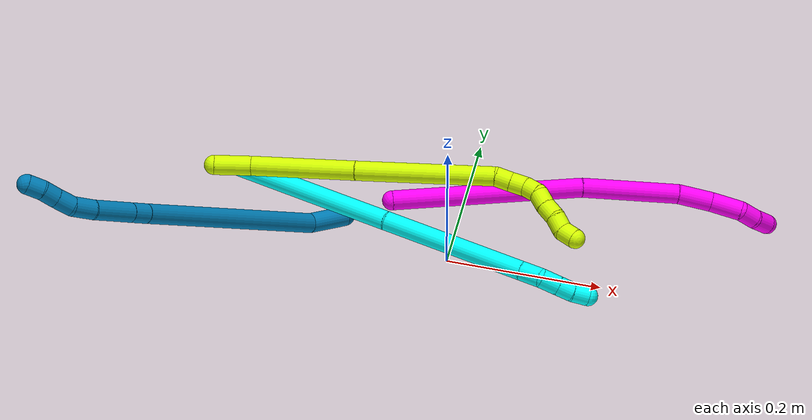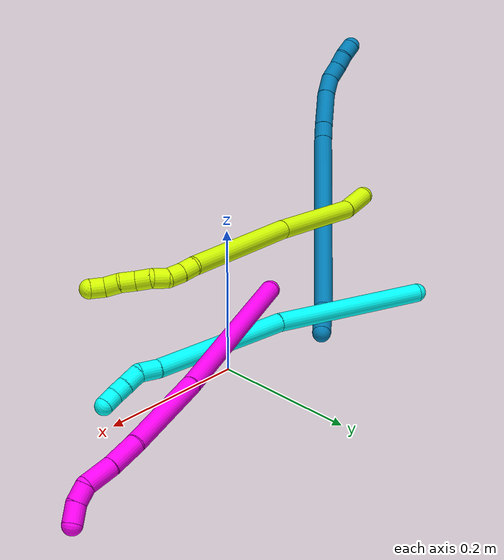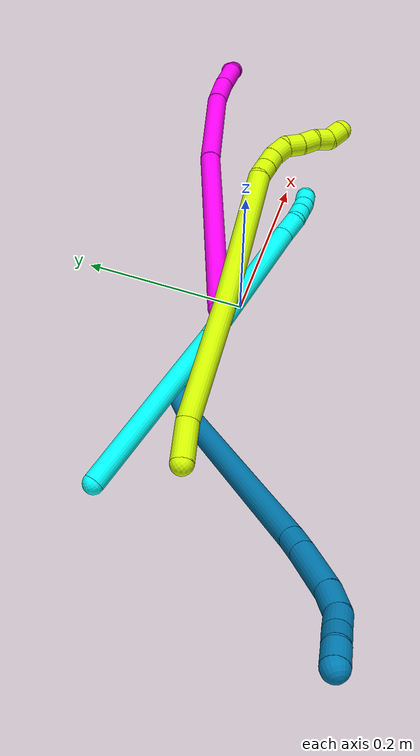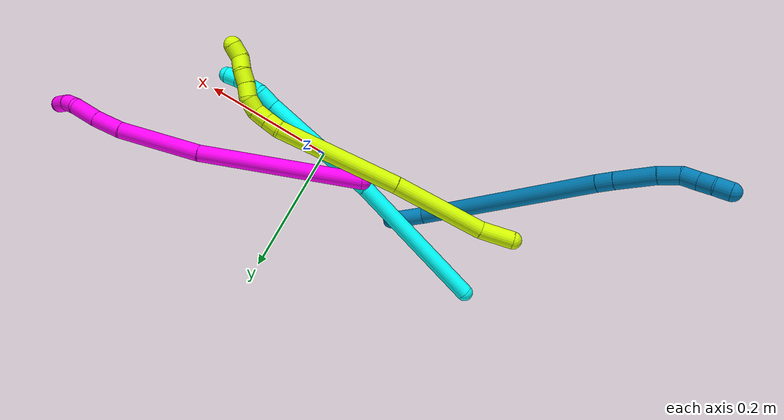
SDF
<sdf version="1.7">
 <world name="default">
  <model name="photoneo_s_sensor">
   <static>1</static>
   <pose>0 0 2 1.57079 1.57079 3.14159</pose>
   <link name="link">
    <inertial><mass>0.1</mass></inertial>
    <sensor name="sensor" type="depth">
     <update_rate>30</update_rate>
     <camera>
      <horizontal_fov>1.22</horizontal_fov>
      <image><width>1920</width><height>1200</height><format>B8G8R8</format></image>
      <clip><near>0.1</near><far>4</far></clip>
      <depth_camera><output>points</output></depth_camera>
     </camera>
     <plugin name="camera_plugin" filename="libgazebo_ros_depth_camera.so">
      <baseline>0.2</baseline>
      <alwaysOn>1</alwaysOn>
      <updateRate>0.0</updateRate>
      <cameraName>camera_ir</cameraName>
      <imageTopicName>/camera/color/image_raw</imageTopicName>
      <cameraInfoTopicName>/camera/color/camera_info</cameraInfoTopicName>
      <depthImageTopicName>/camera/depth/image_raw</depthImageTopicName>
      <depthImageCameraInfoTopicName>/camera/depth/camera_info</depthImageCameraInfoTopicName>
      <pointCloudTopicName>/camera/depth/points</pointCloudTopicName>
      <frameName>fr_optical</frameName>
      <pointCloudCutoff>0.1</pointCloudCutoff>
      <pointCloudCutoffMax>2.0</pointCloudCutoffMax>
      <distortionK1>0</distortionK1>
      <distortionK2>0</distortionK2>
      <distortionK3>0</distortionK3>
      <distortionT1>0</distortionT1>
      <distortionT2>0</distortionT2>
      <CxPrime>0</CxPrime>
      <Cx>0</Cx>
      <Cy>0</Cy>
      <focalLength>0</focalLength>
      <hackBaseline>0</hackBaseline>
     </plugin>
    </sensor>
   </link>
  </model>
  <model name="bin">
   <static>1</static>
   <link name="bottom">
    <collision name="collision-bottom">
     <pose>0 0 -0.01 0 -0 0</pose>
     <geometry><box><size>0.8 0.6 0.02</size></box></geometry>
     <surface>
      <friction><ode><mu>100</mu><mu2>100</mu2></ode></friction>
      <contact><collide_bitmask>65535</collide_bitmask></contact>
     </surface>
    </collision>
   </link>
   <link name="west_wall">
    <collision name="collision-west_wall">
     <pose>-0.41 0 0.1 0 -0 0</pose>
     <geometry><box><size>0.02 0.6 0.2</size></box></geometry>
     <surface>
      <friction><ode><mu>100</mu><mu2>100</mu2></ode></friction>
      <contact><collide_bitmask>65535</collide_bitmask></contact>
     </surface>
    </collision>
   </link>
   <link name="east_wall">
    <collision name="collision-east_wall">
     <pose>0.41 0 0.1 0 -0 0</pose>
     <geometry><box><size>0.02 0.6 0.2</size></box></geometry>
     <surface>
      <friction><ode><mu>100</mu><mu2>100</mu2></ode></friction>
      <contact><collide_bitmask>65535</collide_bitmask></contact>
     </surface>
    </collision>
   </link>
   <link name="south_wall">
    <collision name="collision-south_wall">
     <pose>0 -0.31 0.1 0 -0 0</pose>
     <geometry><box><size>0.8 0.02 0.2</size></box></geometry>
     <surface>
      <friction><ode><mu>100</mu><mu2>100</mu2></ode></friction>
      <contact><collide_bitmask>65535</collide_bitmask></contact>
     </surface>
    </collision>
   </link>
   <link name="north_wall">
    <collision name="collision-north_wall">
     <pose>0 0.31 0.1 0 -0 0</pose>
     <geometry><box><size>0.8 0.02 0.2</size></box></geometry>
     <surface>
      <friction><ode><mu>100</mu><mu2>100</mu2></ode></friction>
      <contact><collide_bitmask>65535</collide_bitmask></contact>
     </surface>
    </collision>
   </link>
  </model>
  <model name="3">
   <static>0</static>
   <link name="3">
    <collision name="collision-cylinder-e_1_1_4">
     <pose>0.091592 -0.060018 -0.003148 1.62319 0.990094 1.03455</pose>
     <geometry><cylinder><radius>0.0125</radius><length>0.2191</length></cylinder></geometry>
     <surface>
      <friction><ode><mu>1.16</mu><mu2>1.16</mu2><slip1>0</slip1><slip2>0</slip2></ode></friction>
      <contact><ode><kp>1e+06</kp><kd>1</kd><max_vel>0</max_vel><min_depth>0.001</min_depth></ode></contact>
     </surface>
    </collision>
    <visual name="visual-cylinder-e_1_1_4">
     <pose>0.091592 -0.060018 -0.003148 1.62319 0.990094 1.03455</pose>
     <geometry><cylinder><radius>0.0125</radius><length>0.2191</length></cylinder></geometry>
     <material><ambient>0.003922 1 0.996078 1</ambient></material>
    </visual>
    <collision name="collision-cylinder-e_2_4_5">
     <pose>0.267713 -0.160877 -0.01191 1.70742 1.11703 1.24365</pose>
     <geometry><cylinder><radius>0.0125</radius><length>0.188093</length></cylinder></geometry>
     <surface>
      <friction><ode><mu>1.16</mu><mu2>1.16</mu2><slip1>0</slip1><slip2>0</slip2></ode></friction>
      <contact><ode><kp>1e+06</kp><kd>1</kd><max_vel>0</max_vel><min_depth>0.001</min_depth></ode></contact>
     </surface>
    </collision>
    <visual name="visual-cylinder-e_2_4_5">
     <pose>0.267713 -0.160877 -0.01191 1.70742 1.11703 1.24365</pose>
     <geometry><cylinder><radius>0.0125</radius><length>0.188093</length></cylinder></geometry>
     <material><ambient>0.003922 1 0.996078 1</ambient></material>
    </visual>
    <collision name="collision-cylinder-e_3_5_6">
     <pose>0.363901 -0.20943 -0.017891 1.61817 0.985947 1.02597</pose>
     <geometry><cylinder><radius>0.0125</radius><length>0.027965</length></cylinder></geometry>
     <surface>
      <friction><ode><mu>1.16</mu><mu2>1.16</mu2><slip1>0</slip1><slip2>0</slip2></ode></friction>
      <contact><ode><kp>1e+06</kp><kd>1</kd><max_vel>0</max_vel><min_depth>0.001</min_depth></ode></contact>
     </surface>
    </collision>
    <visual name="visual-cylinder-e_3_5_6">
     <pose>0.363901 -0.20943 -0.017891 1.61817 0.985947 1.02597</pose>
     <geometry><cylinder><radius>0.0125</radius><length>0.027965</length></cylinder></geometry>
     <material><ambient>0.003922 1 0.996078 1</ambient></material>
    </visual>
    <collision name="collision-cylinder-e_4_6_7">
     <pose>0.387197 -0.218376 -0.020675 2.66909 1.34152 2.55244</pose>
     <geometry><cylinder><radius>0.0125</radius><length>0.0239</length></cylinder></geometry>
     <surface>
      <friction><ode><mu>1.16</mu><mu2>1.16</mu2><slip1>0</slip1><slip2>0</slip2></ode></friction>
      <contact><ode><kp>1e+06</kp><kd>1</kd><max_vel>0</max_vel><min_depth>0.001</min_depth></ode></contact>
     </surface>
    </collision>
    <visual name="visual-cylinder-e_4_6_7">
     <pose>0.387197 -0.218376 -0.020675 2.66909 1.34152 2.55244</pose>
     <geometry><cylinder><radius>0.0125</radius><length>0.0239</length></cylinder></geometry>
     <material><ambient>0.003922 1 0.996078 1</ambient></material>
    </visual>
    <collision name="collision-cylinder-e_5_7_8">
     <pose>0.408754 -0.220826 -0.025103 2.59847 1.33844 2.46466</pose>
     <geometry><cylinder><radius>0.0125</radius><length>0.020387</length></cylinder></geometry>
     <surface>
      <friction><ode><mu>1.16</mu><mu2>1.16</mu2><slip1>0</slip1><slip2>0</slip2></ode></friction>
      <contact><ode><kp>1e+06</kp><kd>1</kd><max_vel>0</max_vel><min_depth>0.001</min_depth></ode></contact>
     </surface>
    </collision>
    <visual name="visual-cylinder-e_5_7_8">
     <pose>0.408754 -0.220826 -0.025103 2.59847 1.33844 2.46466</pose>
     <geometry><cylinder><radius>0.0125</radius><length>0.020387</length></cylinder></geometry>
     <material><ambient>0.003922 1 0.996078 1</ambient></material>
    </visual>
    <collision name="collision-cylinder-e_6_8_2">
     <pose>0.428928 -0.222554 -0.027564 2.29065 1.50408 2.23935</pose>
     <geometry><cylinder><radius>0.0125</radius><length>0.020556</length></cylinder></geometry>
     <surface>
      <friction><ode><mu>1.16</mu><mu2>1.16</mu2><slip1>0</slip1><slip2>0</slip2></ode></friction>
      <contact><ode><kp>1e+06</kp><kd>1</kd><max_vel>0</max_vel><min_depth>0.001</min_depth></ode></contact>
     </surface>
    </collision>
    <visual name="visual-cylinder-e_6_8_2">
     <pose>0.428928 -0.222554 -0.027564 2.29065 1.50408 2.23935</pose>
     <geometry><cylinder><radius>0.0125</radius><length>0.020556</length></cylinder></geometry>
     <material><ambient>0.003922 1 0.996078 1</ambient></material>
    </visual>
    <collision name="collision-sphere-2">
     <pose>0.439183 -0.223069 -0.028015 0 -0 0</pose>
     <geometry><sphere><radius>0.0125</radius></sphere></geometry>
     <surface>
      <friction><ode><mu>1.16</mu><mu2>1.16</mu2><slip1>0</slip1><slip2>0</slip2></ode></friction>
      <contact><ode><kp>1e+06</kp><kd>1</kd><max_vel>0</max_vel><min_depth>0.001</min_depth></ode></contact>
     </surface>
    </collision>
    <visual name="visual-sphere-2">
     <pose>0.439183 -0.223069 -0.028015 0 -0 0</pose>
     <geometry><sphere><radius>0.0125</radius></sphere></geometry>
     <material><ambient>0.003922 1 0.996078 1</ambient></material>
    </visual>
    <collision name="collision-sphere-4">
     <pose>0.183184 -0.120036 -0.006295 0 -0 0</pose>
     <geometry><sphere><radius>0.0125</radius></sphere></geometry>
     <surface>
      <friction><ode><mu>1.16</mu><mu2>1.16</mu2><slip1>0</slip1><slip2>0</slip2></ode></friction>
      <contact><ode><kp>1e+06</kp><kd>1</kd><max_vel>0</max_vel><min_depth>0.001</min_depth></ode></contact>
     </surface>
    </collision>
    <visual name="visual-sphere-4">
     <pose>0.183184 -0.120036 -0.006295 0 -0 0</pose>
     <geometry><sphere><radius>0.0125</radius></sphere></geometry>
     <material><ambient>0.003922 1 0.996078 1</ambient></material>
    </visual>
    <collision name="collision-sphere-1">
     <geometry><sphere><radius>0.0125</radius></sphere></geometry>
     <surface>
      <friction><ode><mu>1.16</mu><mu2>1.16</mu2><slip1>0</slip1><slip2>0</slip2></ode></friction>
      <contact><ode><kp>1e+06</kp><kd>1</kd><max_vel>0</max_vel><min_depth>0.001</min_depth></ode></contact>
     </surface>
    </collision>
    <visual name="visual-sphere-1">
     <geometry><sphere><radius>0.0125</radius></sphere></geometry>
     <material><ambient>0.003922 1 0.996078 1</ambient></material>
    </visual>
    <collision name="collision-sphere-8">
     <pose>0.418673 -0.222039 -0.027112 0 -0 0</pose>
     <geometry><sphere><radius>0.0125</radius></sphere></geometry>
     <surface>
      <friction><ode><mu>1.16</mu><mu2>1.16</mu2><slip1>0</slip1><slip2>0</slip2></ode></friction>
      <contact><ode><kp>1e+06</kp><kd>1</kd><max_vel>0</max_vel><min_depth>0.001</min_depth></ode></contact>
     </surface>
    </collision>
    <visual name="visual-sphere-8">
     <pose>0.418673 -0.222039 -0.027112 0 -0 0</pose>
     <geometry><sphere><radius>0.0125</radius></sphere></geometry>
     <material><ambient>0.003922 1 0.996078 1</ambient></material>
    </visual>
    <collision name="collision-sphere-5">
     <pose>0.352242 -0.201719 -0.017525 0 -0 0</pose>
     <geometry><sphere><radius>0.0125</radius></sphere></geometry>
     <surface>
      <friction><ode><mu>1.16</mu><mu2>1.16</mu2><slip1>0</slip1><slip2>0</slip2></ode></friction>
      <contact><ode><kp>1e+06</kp><kd>1</kd><max_vel>0</max_vel><min_depth>0.001</min_depth></ode></contact>
     </surface>
    </collision>
    <visual name="visual-sphere-5">
     <pose>0.352242 -0.201719 -0.017525 0 -0 0</pose>
     <geometry><sphere><radius>0.0125</radius></sphere></geometry>
     <material><ambient>0.003922 1 0.996078 1</ambient></material>
    </visual>
    <collision name="collision-sphere-6">
     <pose>0.375559 -0.21714 -0.018256 0 -0 0</pose>
     <geometry><sphere><radius>0.0125</radius></sphere></geometry>
     <surface>
      <friction><ode><mu>1.16</mu><mu2>1.16</mu2><slip1>0</slip1><slip2>0</slip2></ode></friction>
      <contact><ode><kp>1e+06</kp><kd>1</kd><max_vel>0</max_vel><min_depth>0.001</min_depth></ode></contact>
     </surface>
    </collision>
    <visual name="visual-sphere-6">
     <pose>0.375559 -0.21714 -0.018256 0 -0 0</pose>
     <geometry><sphere><radius>0.0125</radius></sphere></geometry>
     <material><ambient>0.003922 1 0.996078 1</ambient></material>
    </visual>
    <collision name="collision-sphere-7">
     <pose>0.398834 -0.219613 -0.023093 0 -0 0</pose>
     <geometry><sphere><radius>0.0125</radius></sphere></geometry>
     <surface>
      <friction><ode><mu>1.16</mu><mu2>1.16</mu2><slip1>0</slip1><slip2>0</slip2></ode></friction>
      <contact><ode><kp>1e+06</kp><kd>1</kd><max_vel>0</max_vel><min_depth>0.001</min_depth></ode></contact>
     </surface>
    </collision>
    <visual name="visual-sphere-7">
     <pose>0.398834 -0.219613 -0.023093 0 -0 0</pose>
     <geometry><sphere><radius>0.0125</radius></sphere></geometry>
     <material><ambient>0.003922 1 0.996078 1</ambient></material>
    </visual>
    <inertial>
     <pose>0.214007 -0.127125 -0.010005 0 -0 0</pose>
     <mass>0.5</mass>
     <inertia>
      <ixx>0.001014</ixx>
      <ixy>0</ixy>
      <ixz>0</ixz>
      <iyy>0.001703</iyy>
      <iyz>0</iyz>
      <izz>-0.000524</izz>
     </inertia>
    </inertial>
   </link>
   <pose>-0.293127 0.071516 0.02944 -0.616869 0.272685 0.209619</pose>
  </model>
  <model name="9">
   <static>0</static>
   <link name="9">
    <collision name="collision-cylinder-e_1_1_4">
     <pose>-0.00504 -0.00131 0.025 0.052364 -0.198688 -0.00522</pose>
     <geometry><cylinder><radius>0.0125</radius><length>0.051073</length></cylinder></geometry>
     <surface>
      <friction><ode><mu>1.16</mu><mu2>1.16</mu2><slip1>0</slip1><slip2>0</slip2></ode></friction>
      <contact><ode><kp>1e+06</kp><kd>1</kd><max_vel>0</max_vel><min_depth>0.001</min_depth></ode></contact>
     </surface>
    </collision>
    <visual name="visual-cylinder-e_1_1_4">
     <pose>-0.00504 -0.00131 0.025 0.052364 -0.198688 -0.00522</pose>
     <geometry><cylinder><radius>0.0125</radius><length>0.051073</length></cylinder></geometry>
     <material><ambient>0 0.490196 0.709804 1</ambient></material>
    </visual>
    <collision name="collision-cylinder-e_2_4_5">
     <pose>-0.056502 -0.049919 0.169912 0.375702 -0.345667 -0.066346</pose>
     <geometry><cylinder><radius>0.0125</radius><length>0.274015</length></cylinder></geometry>
     <surface>
      <friction><ode><mu>1.16</mu><mu2>1.16</mu2><slip1>0</slip1><slip2>0</slip2></ode></friction>
      <contact><ode><kp>1e+06</kp><kd>1</kd><max_vel>0</max_vel><min_depth>0.001</min_depth></ode></contact>
     </surface>
    </collision>
    <visual name="visual-cylinder-e_2_4_5">
     <pose>-0.056502 -0.049919 0.169912 0.375702 -0.345667 -0.066346</pose>
     <geometry><cylinder><radius>0.0125</radius><length>0.274015</length></cylinder></geometry>
     <material><ambient>0 0.490196 0.709804 1</ambient></material>
    </visual>
    <collision name="collision-cylinder-e_3_5_6">
     <pose>-0.106539 -0.101321 0.300531 0.366103 -0.305454 -0.056975</pose>
     <geometry><cylinder><radius>0.0125</radius><length>0.024044</length></cylinder></geometry>
     <surface>
      <friction><ode><mu>1.16</mu><mu2>1.16</mu2><slip1>0</slip1><slip2>0</slip2></ode></friction>
      <contact><ode><kp>1e+06</kp><kd>1</kd><max_vel>0</max_vel><min_depth>0.001</min_depth></ode></contact>
     </surface>
    </collision>
    <visual name="visual-cylinder-e_3_5_6">
     <pose>-0.106539 -0.101321 0.300531 0.366103 -0.305454 -0.056975</pose>
     <geometry><cylinder><radius>0.0125</radius><length>0.024044</length></cylinder></geometry>
     <material><ambient>0 0.490196 0.709804 1</ambient></material>
    </visual>
    <collision name="collision-cylinder-e_4_6_7">
     <pose>-0.117883 -0.114908 0.336752 0.355816 -0.276626 -0.050049</pose>
     <geometry><cylinder><radius>0.0125</radius><length>0.056593</length></cylinder></geometry>
     <surface>
      <friction><ode><mu>1.16</mu><mu2>1.16</mu2><slip1>0</slip1><slip2>0</slip2></ode></friction>
      <contact><ode><kp>1e+06</kp><kd>1</kd><max_vel>0</max_vel><min_depth>0.001</min_depth></ode></contact>
     </surface>
    </collision>
    <visual name="visual-cylinder-e_4_6_7">
     <pose>-0.117883 -0.114908 0.336752 0.355816 -0.276626 -0.050049</pose>
     <geometry><cylinder><radius>0.0125</radius><length>0.056593</length></cylinder></geometry>
     <material><ambient>0 0.490196 0.709804 1</ambient></material>
    </visual>
    <collision name="collision-cylinder-e_5_7_8">
     <pose>-0.127768 -0.129914 0.375964 0.383358 -0.145051 -0.028196</pose>
     <geometry><cylinder><radius>0.0125</radius><length>0.02985</length></cylinder></geometry>
     <surface>
      <friction><ode><mu>1.16</mu><mu2>1.16</mu2><slip1>0</slip1><slip2>0</slip2></ode></friction>
      <contact><ode><kp>1e+06</kp><kd>1</kd><max_vel>0</max_vel><min_depth>0.001</min_depth></ode></contact>
     </surface>
    </collision>
    <visual name="visual-cylinder-e_5_7_8">
     <pose>-0.127768 -0.129914 0.375964 0.383358 -0.145051 -0.028196</pose>
     <geometry><cylinder><radius>0.0125</radius><length>0.02985</length></cylinder></geometry>
     <material><ambient>0 0.490196 0.709804 1</ambient></material>
    </visual>
    <collision name="collision-cylinder-e_6_8_9">
     <pose>-0.128441 -0.14195 0.399174 0.600199 0.128031 0.039668</pose>
     <geometry><cylinder><radius>0.0125</radius><length>0.023249</length></cylinder></geometry>
     <surface>
      <friction><ode><mu>1.16</mu><mu2>1.16</mu2><slip1>0</slip1><slip2>0</slip2></ode></friction>
      <contact><ode><kp>1e+06</kp><kd>1</kd><max_vel>0</max_vel><min_depth>0.001</min_depth></ode></contact>
     </surface>
    </collision>
    <visual name="visual-cylinder-e_6_8_9">
     <pose>-0.128441 -0.14195 0.399174 0.600199 0.128031 0.039668</pose>
     <geometry><cylinder><radius>0.0125</radius><length>0.023249</length></cylinder></geometry>
     <material><ambient>0 0.490196 0.709804 1</ambient></material>
    </visual>
    <collision name="collision-cylinder-e_7_9_10">
     <pose>-0.126261 -0.154612 0.416706 0.654347 0.068796 0.023355</pose>
     <geometry><cylinder><radius>0.0125</radius><length>0.020256</length></cylinder></geometry>
     <surface>
      <friction><ode><mu>1.16</mu><mu2>1.16</mu2><slip1>0</slip1><slip2>0</slip2></ode></friction>
      <contact><ode><kp>1e+06</kp><kd>1</kd><max_vel>0</max_vel><min_depth>0.001</min_depth></ode></contact>
     </surface>
    </collision>
    <visual name="visual-cylinder-e_7_9_10">
     <pose>-0.126261 -0.154612 0.416706 0.654347 0.068796 0.023355</pose>
     <geometry><cylinder><radius>0.0125</radius><length>0.020256</length></cylinder></geometry>
     <material><ambient>0 0.490196 0.709804 1</ambient></material>
    </visual>
    <collision name="collision-cylinder-e_8_10_2">
     <pose>-0.123724 -0.165416 0.433907 0.46908 0.176843 0.042359</pose>
     <geometry><cylinder><radius>0.0125</radius><length>0.020919</length></cylinder></geometry>
     <surface>
      <friction><ode><mu>1.16</mu><mu2>1.16</mu2><slip1>0</slip1><slip2>0</slip2></ode></friction>
      <contact><ode><kp>1e+06</kp><kd>1</kd><max_vel>0</max_vel><min_depth>0.001</min_depth></ode></contact>
     </surface>
    </collision>
    <visual name="visual-cylinder-e_8_10_2">
     <pose>-0.123724 -0.165416 0.433907 0.46908 0.176843 0.042359</pose>
     <geometry><cylinder><radius>0.0125</radius><length>0.020919</length></cylinder></geometry>
     <material><ambient>0 0.490196 0.709804 1</ambient></material>
    </visual>
    <collision name="collision-sphere-2">
     <pose>-0.121884 -0.170071 0.443092 0 -0 0</pose>
     <geometry><sphere><radius>0.0125</radius></sphere></geometry>
     <surface>
      <friction><ode><mu>1.16</mu><mu2>1.16</mu2><slip1>0</slip1><slip2>0</slip2></ode></friction>
      <contact><ode><kp>1e+06</kp><kd>1</kd><max_vel>0</max_vel><min_depth>0.001</min_depth></ode></contact>
     </surface>
    </collision>
    <visual name="visual-sphere-2">
     <pose>-0.121884 -0.170071 0.443092 0 -0 0</pose>
     <geometry><sphere><radius>0.0125</radius></sphere></geometry>
     <material><ambient>0 0.490196 0.709804 1</ambient></material>
    </visual>
    <collision name="collision-sphere-10">
     <pose>-0.125564 -0.160762 0.424723 0 -0 0</pose>
     <geometry><sphere><radius>0.0125</radius></sphere></geometry>
     <surface>
      <friction><ode><mu>1.16</mu><mu2>1.16</mu2><slip1>0</slip1><slip2>0</slip2></ode></friction>
      <contact><ode><kp>1e+06</kp><kd>1</kd><max_vel>0</max_vel><min_depth>0.001</min_depth></ode></contact>
     </surface>
    </collision>
    <visual name="visual-sphere-10">
     <pose>-0.125564 -0.160762 0.424723 0 -0 0</pose>
     <geometry><sphere><radius>0.0125</radius></sphere></geometry>
     <material><ambient>0 0.490196 0.709804 1</ambient></material>
    </visual>
    <collision name="collision-sphere-9">
     <pose>-0.126957 -0.148462 0.408689 0 -0 0</pose>
     <geometry><sphere><radius>0.0125</radius></sphere></geometry>
     <surface>
      <friction><ode><mu>1.16</mu><mu2>1.16</mu2><slip1>0</slip1><slip2>0</slip2></ode></friction>
      <contact><ode><kp>1e+06</kp><kd>1</kd><max_vel>0</max_vel><min_depth>0.001</min_depth></ode></contact>
     </surface>
    </collision>
    <visual name="visual-sphere-9">
     <pose>-0.126957 -0.148462 0.408689 0 -0 0</pose>
     <geometry><sphere><radius>0.0125</radius></sphere></geometry>
     <material><ambient>0 0.490196 0.709804 1</ambient></material>
    </visual>
    <collision name="collision-sphere-4">
     <pose>-0.010081 -0.002621 0.05 0 -0 0</pose>
     <geometry><sphere><radius>0.0125</radius></sphere></geometry>
     <surface>
      <friction><ode><mu>1.16</mu><mu2>1.16</mu2><slip1>0</slip1><slip2>0</slip2></ode></friction>
      <contact><ode><kp>1e+06</kp><kd>1</kd><max_vel>0</max_vel><min_depth>0.001</min_depth></ode></contact>
     </surface>
    </collision>
    <visual name="visual-sphere-4">
     <pose>-0.010081 -0.002621 0.05 0 -0 0</pose>
     <geometry><sphere><radius>0.0125</radius></sphere></geometry>
     <material><ambient>0 0.490196 0.709804 1</ambient></material>
    </visual>
    <collision name="collision-sphere-1">
     <geometry><sphere><radius>0.0125</radius></sphere></geometry>
     <surface>
      <friction><ode><mu>1.16</mu><mu2>1.16</mu2><slip1>0</slip1><slip2>0</slip2></ode></friction>
      <contact><ode><kp>1e+06</kp><kd>1</kd><max_vel>0</max_vel><min_depth>0.001</min_depth></ode></contact>
     </surface>
    </collision>
    <visual name="visual-sphere-1">
     <geometry><sphere><radius>0.0125</radius></sphere></geometry>
     <material><ambient>0 0.490196 0.709804 1</ambient></material>
    </visual>
    <collision name="collision-sphere-8">
     <pose>-0.129925 -0.135438 0.38966 0 -0 0</pose>
     <geometry><sphere><radius>0.0125</radius></sphere></geometry>
     <surface>
      <friction><ode><mu>1.16</mu><mu2>1.16</mu2><slip1>0</slip1><slip2>0</slip2></ode></friction>
      <contact><ode><kp>1e+06</kp><kd>1</kd><max_vel>0</max_vel><min_depth>0.001</min_depth></ode></contact>
     </surface>
    </collision>
    <visual name="visual-sphere-8">
     <pose>-0.129925 -0.135438 0.38966 0 -0 0</pose>
     <geometry><sphere><radius>0.0125</radius></sphere></geometry>
     <material><ambient>0 0.490196 0.709804 1</ambient></material>
    </visual>
    <collision name="collision-sphere-5">
     <pose>-0.102924 -0.097217 0.289825 0 -0 0</pose>
     <geometry><sphere><radius>0.0125</radius></sphere></geometry>
     <surface>
      <friction><ode><mu>1.16</mu><mu2>1.16</mu2><slip1>0</slip1><slip2>0</slip2></ode></friction>
      <contact><ode><kp>1e+06</kp><kd>1</kd><max_vel>0</max_vel><min_depth>0.001</min_depth></ode></contact>
     </surface>
    </collision>
    <visual name="visual-sphere-5">
     <pose>-0.102924 -0.097217 0.289825 0 -0 0</pose>
     <geometry><sphere><radius>0.0125</radius></sphere></geometry>
     <material><ambient>0 0.490196 0.709804 1</ambient></material>
    </visual>
    <collision name="collision-sphere-6">
     <pose>-0.110155 -0.105426 0.311236 0 -0 0</pose>
     <geometry><sphere><radius>0.0125</radius></sphere></geometry>
     <surface>
      <friction><ode><mu>1.16</mu><mu2>1.16</mu2><slip1>0</slip1><slip2>0</slip2></ode></friction>
      <contact><ode><kp>1e+06</kp><kd>1</kd><max_vel>0</max_vel><min_depth>0.001</min_depth></ode></contact>
     </surface>
    </collision>
    <visual name="visual-sphere-6">
     <pose>-0.110155 -0.105426 0.311236 0 -0 0</pose>
     <geometry><sphere><radius>0.0125</radius></sphere></geometry>
     <material><ambient>0 0.490196 0.709804 1</ambient></material>
    </visual>
    <collision name="collision-sphere-7">
     <pose>-0.125611 -0.12439 0.362267 0 -0 0</pose>
     <geometry><sphere><radius>0.0125</radius></sphere></geometry>
     <surface>
      <friction><ode><mu>1.16</mu><mu2>1.16</mu2><slip1>0</slip1><slip2>0</slip2></ode></friction>
      <contact><ode><kp>1e+06</kp><kd>1</kd><max_vel>0</max_vel><min_depth>0.001</min_depth></ode></contact>
     </surface>
    </collision>
    <visual name="visual-sphere-7">
     <pose>-0.125611 -0.12439 0.362267 0 -0 0</pose>
     <geometry><sphere><radius>0.0125</radius></sphere></geometry>
     <material><ambient>0 0.490196 0.709804 1</ambient></material>
    </visual>
    <inertial>
     <pose>-0.073837 -0.07291 0.22428 0 -0 0</pose>
     <mass>0.5</mass>
     <inertia>
      <ixx>0.001541</ixx>
      <ixy>0</ixy>
      <ixz>0</ixz>
      <iyy>0.001532</iyy>
      <iyz>0</iyz>
      <izz>0.001234</izz>
     </inertia>
    </inertial>
   </link>
   <pose>-0.141977 0.034334 0.011491 -1.44514 0.371032 2.14738</pose>
  </model>
  <model name="10">
   <static>0</static>
   <link name="10">
    <collision name="collision-cylinder-e_1_1_4">
     <pose>0.094807 0.074013 0.02023 -1.30399 0.890406 -0.698604</pose>
     <geometry><cylinder><radius>0.0125</radius><length>0.243931</length></cylinder></geometry>
     <surface>
      <friction><ode><mu>1.16</mu><mu2>1.16</mu2><slip1>0</slip1><slip2>0</slip2></ode></friction>
      <contact><ode><kp>1e+06</kp><kd>1</kd><max_vel>0</max_vel><min_depth>0.001</min_depth></ode></contact>
     </surface>
    </collision>
    <visual name="visual-cylinder-e_1_1_4">
     <pose>0.094807 0.074013 0.02023 -1.30399 0.890406 -0.698604</pose>
     <geometry><cylinder><radius>0.0125</radius><length>0.243931</length></cylinder></geometry>
     <material><ambient>1 0 0.964706 1</ambient></material>
    </visual>
    <collision name="collision-cylinder-e_2_4_5">
     <pose>0.239637 0.180919 0.057289 -1.09787 0.934627 -0.598706</pose>
     <geometry><cylinder><radius>0.0125</radius><length>0.124378</length></cylinder></geometry>
     <surface>
      <friction><ode><mu>1.16</mu><mu2>1.16</mu2><slip1>0</slip1><slip2>0</slip2></ode></friction>
      <contact><ode><kp>1e+06</kp><kd>1</kd><max_vel>0</max_vel><min_depth>0.001</min_depth></ode></contact>
     </surface>
    </collision>
    <visual name="visual-cylinder-e_2_4_5">
     <pose>0.239637 0.180919 0.057289 -1.09787 0.934627 -0.598706</pose>
     <geometry><cylinder><radius>0.0125</radius><length>0.124378</length></cylinder></geometry>
     <material><ambient>1 0 0.964706 1</ambient></material>
    </visual>
    <collision name="collision-cylinder-e_3_5_6">
     <pose>0.307605 0.222823 0.082604 -0.815453 0.966915 -0.445996</pose>
     <geometry><cylinder><radius>0.0125</radius><length>0.043601</length></cylinder></geometry>
     <surface>
      <friction><ode><mu>1.16</mu><mu2>1.16</mu2><slip1>0</slip1><slip2>0</slip2></ode></friction>
      <contact><ode><kp>1e+06</kp><kd>1</kd><max_vel>0</max_vel><min_depth>0.001</min_depth></ode></contact>
     </surface>
    </collision>
    <visual name="visual-cylinder-e_3_5_6">
     <pose>0.307605 0.222823 0.082604 -0.815453 0.966915 -0.445996</pose>
     <geometry><cylinder><radius>0.0125</radius><length>0.043601</length></cylinder></geometry>
     <material><ambient>1 0 0.964706 1</ambient></material>
    </visual>
    <collision name="collision-cylinder-e_4_6_7">
     <pose>0.341033 0.239758 0.100804 -0.684199 0.890243 -0.336544</pose>
     <geometry><cylinder><radius>0.0125</radius><length>0.039841</length></cylinder></geometry>
     <surface>
      <friction><ode><mu>1.16</mu><mu2>1.16</mu2><slip1>0</slip1><slip2>0</slip2></ode></friction>
      <contact><ode><kp>1e+06</kp><kd>1</kd><max_vel>0</max_vel><min_depth>0.001</min_depth></ode></contact>
     </surface>
    </collision>
    <visual name="visual-cylinder-e_4_6_7">
     <pose>0.341033 0.239758 0.100804 -0.684199 0.890243 -0.336544</pose>
     <geometry><cylinder><radius>0.0125</radius><length>0.039841</length></cylinder></geometry>
     <material><ambient>1 0 0.964706 1</ambient></material>
    </visual>
    <collision name="collision-cylinder-e_5_7_8">
     <pose>0.367705 0.247838 0.113316 -0.056058 1.32534 -0.043752</pose>
     <geometry><cylinder><radius>0.0125</radius><length>0.02307</length></cylinder></geometry>
     <surface>
      <friction><ode><mu>1.16</mu><mu2>1.16</mu2><slip1>0</slip1><slip2>0</slip2></ode></friction>
      <contact><ode><kp>1e+06</kp><kd>1</kd><max_vel>0</max_vel><min_depth>0.001</min_depth></ode></contact>
     </surface>
    </collision>
    <visual name="visual-cylinder-e_5_7_8">
     <pose>0.367705 0.247838 0.113316 -0.056058 1.32534 -0.043752</pose>
     <geometry><cylinder><radius>0.0125</radius><length>0.02307</length></cylinder></geometry>
     <material><ambient>1 0 0.964706 1</ambient></material>
    </visual>
    <collision name="collision-cylinder-e_6_8_2">
     <pose>0.391461 0.247665 0.115428 2.69423 1.51024 2.66729</pose>
     <geometry><cylinder><radius>0.0125</radius><length>0.025179</length></cylinder></geometry>
     <surface>
      <friction><ode><mu>1.16</mu><mu2>1.16</mu2><slip1>0</slip1><slip2>0</slip2></ode></friction>
      <contact><ode><kp>1e+06</kp><kd>1</kd><max_vel>0</max_vel><min_depth>0.001</min_depth></ode></contact>
     </surface>
    </collision>
    <visual name="visual-cylinder-e_6_8_2">
     <pose>0.391461 0.247665 0.115428 2.69423 1.51024 2.66729</pose>
     <geometry><cylinder><radius>0.0125</radius><length>0.025179</length></cylinder></geometry>
     <material><ambient>1 0 0.964706 1</ambient></material>
    </visual>
    <collision name="collision-sphere-2">
     <pose>0.404028 0.247336 0.114741 0 -0 0</pose>
     <geometry><sphere><radius>0.0125</radius></sphere></geometry>
     <surface>
      <friction><ode><mu>1.16</mu><mu2>1.16</mu2><slip1>0</slip1><slip2>0</slip2></ode></friction>
      <contact><ode><kp>1e+06</kp><kd>1</kd><max_vel>0</max_vel><min_depth>0.001</min_depth></ode></contact>
     </surface>
    </collision>
    <visual name="visual-sphere-2">
     <pose>0.404028 0.247336 0.114741 0 -0 0</pose>
     <geometry><sphere><radius>0.0125</radius></sphere></geometry>
     <material><ambient>1 0 0.964706 1</ambient></material>
    </visual>
    <collision name="collision-sphere-4">
     <pose>0.189614 0.148026 0.040459 0 -0 0</pose>
     <geometry><sphere><radius>0.0125</radius></sphere></geometry>
     <surface>
      <friction><ode><mu>1.16</mu><mu2>1.16</mu2><slip1>0</slip1><slip2>0</slip2></ode></friction>
      <contact><ode><kp>1e+06</kp><kd>1</kd><max_vel>0</max_vel><min_depth>0.001</min_depth></ode></contact>
     </surface>
    </collision>
    <visual name="visual-sphere-4">
     <pose>0.189614 0.148026 0.040459 0 -0 0</pose>
     <geometry><sphere><radius>0.0125</radius></sphere></geometry>
     <material><ambient>1 0 0.964706 1</ambient></material>
    </visual>
    <collision name="collision-sphere-1">
     <geometry><sphere><radius>0.0125</radius></sphere></geometry>
     <surface>
      <friction><ode><mu>1.16</mu><mu2>1.16</mu2><slip1>0</slip1><slip2>0</slip2></ode></friction>
      <contact><ode><kp>1e+06</kp><kd>1</kd><max_vel>0</max_vel><min_depth>0.001</min_depth></ode></contact>
     </surface>
    </collision>
    <visual name="visual-sphere-1">
     <geometry><sphere><radius>0.0125</radius></sphere></geometry>
     <material><ambient>1 0 0.964706 1</ambient></material>
    </visual>
    <collision name="collision-sphere-8">
     <pose>0.378895 0.247995 0.116115 0 -0 0</pose>
     <geometry><sphere><radius>0.0125</radius></sphere></geometry>
     <surface>
      <friction><ode><mu>1.16</mu><mu2>1.16</mu2><slip1>0</slip1><slip2>0</slip2></ode></friction>
      <contact><ode><kp>1e+06</kp><kd>1</kd><max_vel>0</max_vel><min_depth>0.001</min_depth></ode></contact>
     </surface>
    </collision>
    <visual name="visual-sphere-8">
     <pose>0.378895 0.247995 0.116115 0 -0 0</pose>
     <geometry><sphere><radius>0.0125</radius></sphere></geometry>
     <material><ambient>1 0 0.964706 1</ambient></material>
    </visual>
    <collision name="collision-sphere-5">
     <pose>0.289661 0.213811 0.074118 0 -0 0</pose>
     <geometry><sphere><radius>0.0125</radius></sphere></geometry>
     <surface>
      <friction><ode><mu>1.16</mu><mu2>1.16</mu2><slip1>0</slip1><slip2>0</slip2></ode></friction>
      <contact><ode><kp>1e+06</kp><kd>1</kd><max_vel>0</max_vel><min_depth>0.001</min_depth></ode></contact>
     </surface>
    </collision>
    <visual name="visual-sphere-5">
     <pose>0.289661 0.213811 0.074118 0 -0 0</pose>
     <geometry><sphere><radius>0.0125</radius></sphere></geometry>
     <material><ambient>1 0 0.964706 1</ambient></material>
    </visual>
    <collision name="collision-sphere-6">
     <pose>0.32555 0.231836 0.091091 0 -0 0</pose>
     <geometry><sphere><radius>0.0125</radius></sphere></geometry>
     <surface>
      <friction><ode><mu>1.16</mu><mu2>1.16</mu2><slip1>0</slip1><slip2>0</slip2></ode></friction>
      <contact><ode><kp>1e+06</kp><kd>1</kd><max_vel>0</max_vel><min_depth>0.001</min_depth></ode></contact>
     </surface>
    </collision>
    <visual name="visual-sphere-6">
     <pose>0.32555 0.231836 0.091091 0 -0 0</pose>
     <geometry><sphere><radius>0.0125</radius></sphere></geometry>
     <material><ambient>1 0 0.964706 1</ambient></material>
    </visual>
    <collision name="collision-sphere-7">
     <pose>0.356516 0.247681 0.110517 0 -0 0</pose>
     <geometry><sphere><radius>0.0125</radius></sphere></geometry>
     <surface>
      <friction><ode><mu>1.16</mu><mu2>1.16</mu2><slip1>0</slip1><slip2>0</slip2></ode></friction>
      <contact><ode><kp>1e+06</kp><kd>1</kd><max_vel>0</max_vel><min_depth>0.001</min_depth></ode></contact>
     </surface>
    </collision>
    <visual name="visual-sphere-7">
     <pose>0.356516 0.247681 0.110517 0 -0 0</pose>
     <geometry><sphere><radius>0.0125</radius></sphere></geometry>
     <material><ambient>1 0 0.964706 1</ambient></material>
    </visual>
    <inertial>
     <pose>0.196541 0.143555 0.050397 0 -0 0</pose>
     <mass>0.5</mass>
     <inertia>
      <ixx>0.000157</ixx>
      <ixy>0</ixy>
      <ixz>0</ixz>
      <iyy>0.000448</iyy>
      <iyz>0</iyz>
      <izz>-0.001921</izz>
     </inertia>
    </inertial>
   </link>
   <pose>-0.072764 0.005087 0.091532 1.50906 0.725093 0.497509</pose>
  </model>
  <model name="15">
   <static>0</static>
   <link name="15">
    <collision name="collision-cylinder-e_1_1_4">
     <pose>0.021869 0.00105 0.009157 -0.114156 1.17191 -0.075813</pose>
     <geometry><cylinder><radius>0.0125</radius><length>0.047464</length></cylinder></geometry>
     <surface>
      <friction><ode><mu>1.16</mu><mu2>1.16</mu2><slip1>0</slip1><slip2>0</slip2></ode></friction>
      <contact><ode><kp>1e+06</kp><kd>1</kd><max_vel>0</max_vel><min_depth>0.001</min_depth></ode></contact>
     </surface>
    </collision>
    <visual name="visual-cylinder-e_1_1_4">
     <pose>0.021869 0.00105 0.009157 -0.114156 1.17191 -0.075813</pose>
     <geometry><cylinder><radius>0.0125</radius><length>0.047464</length></cylinder></geometry>
     <material><ambient>0.835294 1 0 1</ambient></material>
    </visual>
    <collision name="collision-cylinder-e_2_4_5">
     <pose>0.097589 0.006463 0.058458 -0.108264 0.927398 -0.054179</pose>
     <geometry><cylinder><radius>0.0125</radius><length>0.134618</length></cylinder></geometry>
     <surface>
      <friction><ode><mu>1.16</mu><mu2>1.16</mu2><slip1>0</slip1><slip2>0</slip2></ode></friction>
      <contact><ode><kp>1e+06</kp><kd>1</kd><max_vel>0</max_vel><min_depth>0.001</min_depth></ode></contact>
     </surface>
    </collision>
    <visual name="visual-cylinder-e_2_4_5">
     <pose>0.097589 0.006463 0.058458 -0.108264 0.927398 -0.054179</pose>
     <geometry><cylinder><radius>0.0125</radius><length>0.134618</length></cylinder></geometry>
     <material><ambient>0.835294 1 0 1</ambient></material>
    </visual>
    <collision name="collision-cylinder-e_3_5_6">
     <pose>0.225481 0.016142 0.146889 -0.109639 0.990138 -0.059238</pose>
     <geometry><cylinder><radius>0.0125</radius><length>0.17711</length></cylinder></geometry>
     <surface>
      <friction><ode><mu>1.16</mu><mu2>1.16</mu2><slip1>0</slip1><slip2>0</slip2></ode></friction>
      <contact><ode><kp>1e+06</kp><kd>1</kd><max_vel>0</max_vel><min_depth>0.001</min_depth></ode></contact>
     </surface>
    </collision>
    <visual name="visual-cylinder-e_3_5_6">
     <pose>0.225481 0.016142 0.146889 -0.109639 0.990138 -0.059238</pose>
     <geometry><cylinder><radius>0.0125</radius><length>0.17711</length></cylinder></geometry>
     <material><ambient>0.835294 1 0 1</ambient></material>
    </visual>
    <collision name="collision-cylinder-e_4_6_7">
     <pose>0.307641 0.018962 0.200518 0.4369 0.942718 0.225331</pose>
     <geometry><cylinder><radius>0.0125</radius><length>0.020068</length></cylinder></geometry>
     <surface>
      <friction><ode><mu>1.16</mu><mu2>1.16</mu2><slip1>0</slip1><slip2>0</slip2></ode></friction>
      <contact><ode><kp>1e+06</kp><kd>1</kd><max_vel>0</max_vel><min_depth>0.001</min_depth></ode></contact>
     </surface>
    </collision>
    <visual name="visual-cylinder-e_4_6_7">
     <pose>0.307641 0.018962 0.200518 0.4369 0.942718 0.225331</pose>
     <geometry><cylinder><radius>0.0125</radius><length>0.020068</length></cylinder></geometry>
     <material><ambient>0.835294 1 0 1</ambient></material>
    </visual>
    <collision name="collision-cylinder-e_5_7_8">
     <pose>0.323555 0.01451 0.21216 0.301288 0.868421 0.14055</pose>
     <geometry><cylinder><radius>0.0125</radius><length>0.020422</length></cylinder></geometry>
     <surface>
      <friction><ode><mu>1.16</mu><mu2>1.16</mu2><slip1>0</slip1><slip2>0</slip2></ode></friction>
      <contact><ode><kp>1e+06</kp><kd>1</kd><max_vel>0</max_vel><min_depth>0.001</min_depth></ode></contact>
     </surface>
    </collision>
    <visual name="visual-cylinder-e_5_7_8">
     <pose>0.323555 0.01451 0.21216 0.301288 0.868421 0.14055</pose>
     <geometry><cylinder><radius>0.0125</radius><length>0.020422</length></cylinder></geometry>
     <material><ambient>0.835294 1 0 1</ambient></material>
    </visual>
    <collision name="collision-cylinder-e_6_8_9">
     <pose>0.335792 0.010084 0.22708 0.278921 0.460083 0.065723</pose>
     <geometry><cylinder><radius>0.0125</radius><length>0.020014</length></cylinder></geometry>
     <surface>
      <friction><ode><mu>1.16</mu><mu2>1.16</mu2><slip1>0</slip1><slip2>0</slip2></ode></friction>
      <contact><ode><kp>1e+06</kp><kd>1</kd><max_vel>0</max_vel><min_depth>0.001</min_depth></ode></contact>
     </surface>
    </collision>
    <visual name="visual-cylinder-e_6_8_9">
     <pose>0.335792 0.010084 0.22708 0.278921 0.460083 0.065723</pose>
     <geometry><cylinder><radius>0.0125</radius><length>0.020014</length></cylinder></geometry>
     <material><ambient>0.835294 1 0 1</ambient></material>
    </visual>
    <collision name="collision-cylinder-e_7_9_10">
     <pose>0.34254 0.000934 0.242851 0.751403 0.231196 0.091536</pose>
     <geometry><cylinder><radius>0.0125</radius><length>0.020109</length></cylinder></geometry>
     <surface>
      <friction><ode><mu>1.16</mu><mu2>1.16</mu2><slip1>0</slip1><slip2>0</slip2></ode></friction>
      <contact><ode><kp>1e+06</kp><kd>1</kd><max_vel>0</max_vel><min_depth>0.001</min_depth></ode></contact>
     </surface>
    </collision>
    <visual name="visual-cylinder-e_7_9_10">
     <pose>0.34254 0.000934 0.242851 0.751403 0.231196 0.091536</pose>
     <geometry><cylinder><radius>0.0125</radius><length>0.020109</length></cylinder></geometry>
     <material><ambient>0.835294 1 0 1</ambient></material>
    </visual>
    <collision name="collision-cylinder-e_8_10_11">
     <pose>0.348135 -0.011064 0.257819 0.597349 0.335099 0.104054</pose>
     <geometry><cylinder><radius>0.0125</radius><length>0.020019</length></cylinder></geometry>
     <surface>
      <friction><ode><mu>1.16</mu><mu2>1.16</mu2><slip1>0</slip1><slip2>0</slip2></ode></friction>
      <contact><ode><kp>1e+06</kp><kd>1</kd><max_vel>0</max_vel><min_depth>0.001</min_depth></ode></contact>
     </surface>
    </collision>
    <visual name="visual-cylinder-e_8_10_11">
     <pose>0.348135 -0.011064 0.257819 0.597349 0.335099 0.104054</pose>
     <geometry><cylinder><radius>0.0125</radius><length>0.020019</length></cylinder></geometry>
     <material><ambient>0.835294 1 0 1</ambient></material>
    </visual>
    <collision name="collision-cylinder-e_9_11_12">
     <pose>0.35416 -0.023767 0.271866 0.869978 0.27558 0.128693</pose>
     <geometry><cylinder><radius>0.0125</radius><length>0.020085</length></cylinder></geometry>
     <surface>
      <friction><ode><mu>1.16</mu><mu2>1.16</mu2><slip1>0</slip1><slip2>0</slip2></ode></friction>
      <contact><ode><kp>1e+06</kp><kd>1</kd><max_vel>0</max_vel><min_depth>0.001</min_depth></ode></contact>
     </surface>
    </collision>
    <visual name="visual-cylinder-e_9_11_12">
     <pose>0.35416 -0.023767 0.271866 0.869978 0.27558 0.128693</pose>
     <geometry><cylinder><radius>0.0125</radius><length>0.020085</length></cylinder></geometry>
     <material><ambient>0.835294 1 0 1</ambient></material>
    </visual>
    <collision name="collision-cylinder-e_10_12_2">
     <pose>0.361766 -0.034425 0.286249 0.381688 0.506558 0.099929</pose>
     <geometry><cylinder><radius>0.0125</radius><length>0.020091</length></cylinder></geometry>
     <surface>
      <friction><ode><mu>1.16</mu><mu2>1.16</mu2><slip1>0</slip1><slip2>0</slip2></ode></friction>
      <contact><ode><kp>1e+06</kp><kd>1</kd><max_vel>0</max_vel><min_depth>0.001</min_depth></ode></contact>
     </surface>
    </collision>
    <visual name="visual-cylinder-e_10_12_2">
     <pose>0.361766 -0.034425 0.286249 0.381688 0.506558 0.099929</pose>
     <geometry><cylinder><radius>0.0125</radius><length>0.020091</length></cylinder></geometry>
     <material><ambient>0.835294 1 0 1</ambient></material>
    </visual>
    <collision name="collision-sphere-2">
     <pose>0.36664 -0.037696 0.294401 0 -0 0</pose>
     <geometry><sphere><radius>0.0125</radius></sphere></geometry>
     <surface>
      <friction><ode><mu>1.16</mu><mu2>1.16</mu2><slip1>0</slip1><slip2>0</slip2></ode></friction>
      <contact><ode><kp>1e+06</kp><kd>1</kd><max_vel>0</max_vel><min_depth>0.001</min_depth></ode></contact>
     </surface>
    </collision>
    <visual name="visual-sphere-2">
     <pose>0.36664 -0.037696 0.294401 0 -0 0</pose>
     <geometry><sphere><radius>0.0125</radius></sphere></geometry>
     <material><ambient>0.835294 1 0 1</ambient></material>
    </visual>
    <collision name="collision-sphere-12">
     <pose>0.356892 -0.031153 0.278098 0 -0 0</pose>
     <geometry><sphere><radius>0.0125</radius></sphere></geometry>
     <surface>
      <friction><ode><mu>1.16</mu><mu2>1.16</mu2><slip1>0</slip1><slip2>0</slip2></ode></friction>
      <contact><ode><kp>1e+06</kp><kd>1</kd><max_vel>0</max_vel><min_depth>0.001</min_depth></ode></contact>
     </surface>
    </collision>
    <visual name="visual-sphere-12">
     <pose>0.356892 -0.031153 0.278098 0 -0 0</pose>
     <geometry><sphere><radius>0.0125</radius></sphere></geometry>
     <material><ambient>0.835294 1 0 1</ambient></material>
    </visual>
    <collision name="collision-sphere-11">
     <pose>0.351427 -0.016381 0.265635 0 -0 0</pose>
     <geometry><sphere><radius>0.0125</radius></sphere></geometry>
     <surface>
      <friction><ode><mu>1.16</mu><mu2>1.16</mu2><slip1>0</slip1><slip2>0</slip2></ode></friction>
      <contact><ode><kp>1e+06</kp><kd>1</kd><max_vel>0</max_vel><min_depth>0.001</min_depth></ode></contact>
     </surface>
    </collision>
    <visual name="visual-sphere-11">
     <pose>0.351427 -0.016381 0.265635 0 -0 0</pose>
     <geometry><sphere><radius>0.0125</radius></sphere></geometry>
     <material><ambient>0.835294 1 0 1</ambient></material>
    </visual>
    <collision name="collision-sphere-10">
     <pose>0.344844 -0.005748 0.250003 0 -0 0</pose>
     <geometry><sphere><radius>0.0125</radius></sphere></geometry>
     <surface>
      <friction><ode><mu>1.16</mu><mu2>1.16</mu2><slip1>0</slip1><slip2>0</slip2></ode></friction>
      <contact><ode><kp>1e+06</kp><kd>1</kd><max_vel>0</max_vel><min_depth>0.001</min_depth></ode></contact>
     </surface>
    </collision>
    <visual name="visual-sphere-10">
     <pose>0.344844 -0.005748 0.250003 0 -0 0</pose>
     <geometry><sphere><radius>0.0125</radius></sphere></geometry>
     <material><ambient>0.835294 1 0 1</ambient></material>
    </visual>
    <collision name="collision-sphere-9">
     <pose>0.340236 0.007615 0.2357 0 -0 0</pose>
     <geometry><sphere><radius>0.0125</radius></sphere></geometry>
     <surface>
      <friction><ode><mu>1.16</mu><mu2>1.16</mu2><slip1>0</slip1><slip2>0</slip2></ode></friction>
      <contact><ode><kp>1e+06</kp><kd>1</kd><max_vel>0</max_vel><min_depth>0.001</min_depth></ode></contact>
     </surface>
    </collision>
    <visual name="visual-sphere-9">
     <pose>0.340236 0.007615 0.2357 0 -0 0</pose>
     <geometry><sphere><radius>0.0125</radius></sphere></geometry>
     <material><ambient>0.835294 1 0 1</ambient></material>
    </visual>
    <collision name="collision-sphere-4">
     <pose>0.043738 0.0021 0.018315 0 -0 0</pose>
     <geometry><sphere><radius>0.0125</radius></sphere></geometry>
     <surface>
      <friction><ode><mu>1.16</mu><mu2>1.16</mu2><slip1>0</slip1><slip2>0</slip2></ode></friction>
      <contact><ode><kp>1e+06</kp><kd>1</kd><max_vel>0</max_vel><min_depth>0.001</min_depth></ode></contact>
     </surface>
    </collision>
    <visual name="visual-sphere-4">
     <pose>0.043738 0.0021 0.018315 0 -0 0</pose>
     <geometry><sphere><radius>0.0125</radius></sphere></geometry>
     <material><ambient>0.835294 1 0 1</ambient></material>
    </visual>
    <collision name="collision-sphere-1">
     <geometry><sphere><radius>0.0125</radius></sphere></geometry>
     <surface>
      <friction><ode><mu>1.16</mu><mu2>1.16</mu2><slip1>0</slip1><slip2>0</slip2></ode></friction>
      <contact><ode><kp>1e+06</kp><kd>1</kd><max_vel>0</max_vel><min_depth>0.001</min_depth></ode></contact>
     </surface>
    </collision>
    <visual name="visual-sphere-1">
     <geometry><sphere><radius>0.0125</radius></sphere></geometry>
     <material><ambient>0.835294 1 0 1</ambient></material>
    </visual>
    <collision name="collision-sphere-8">
     <pose>0.331349 0.012553 0.21846 0 -0 0</pose>
     <geometry><sphere><radius>0.0125</radius></sphere></geometry>
     <surface>
      <friction><ode><mu>1.16</mu><mu2>1.16</mu2><slip1>0</slip1><slip2>0</slip2></ode></friction>
      <contact><ode><kp>1e+06</kp><kd>1</kd><max_vel>0</max_vel><min_depth>0.001</min_depth></ode></contact>
     </surface>
    </collision>
    <visual name="visual-sphere-8">
     <pose>0.331349 0.012553 0.21846 0 -0 0</pose>
     <geometry><sphere><radius>0.0125</radius></sphere></geometry>
     <material><ambient>0.835294 1 0 1</ambient></material>
    </visual>
    <collision name="collision-sphere-5">
     <pose>0.15144 0.010826 0.098602 0 -0 0</pose>
     <geometry><sphere><radius>0.0125</radius></sphere></geometry>
     <surface>
      <friction><ode><mu>1.16</mu><mu2>1.16</mu2><slip1>0</slip1><slip2>0</slip2></ode></friction>
      <contact><ode><kp>1e+06</kp><kd>1</kd><max_vel>0</max_vel><min_depth>0.001</min_depth></ode></contact>
     </surface>
    </collision>
    <visual name="visual-sphere-5">
     <pose>0.15144 0.010826 0.098602 0 -0 0</pose>
     <geometry><sphere><radius>0.0125</radius></sphere></geometry>
     <material><ambient>0.835294 1 0 1</ambient></material>
    </visual>
    <collision name="collision-sphere-6">
     <pose>0.299522 0.021457 0.195176 0 -0 0</pose>
     <geometry><sphere><radius>0.0125</radius></sphere></geometry>
     <surface>
      <friction><ode><mu>1.16</mu><mu2>1.16</mu2><slip1>0</slip1><slip2>0</slip2></ode></friction>
      <contact><ode><kp>1e+06</kp><kd>1</kd><max_vel>0</max_vel><min_depth>0.001</min_depth></ode></contact>
     </surface>
    </collision>
    <visual name="visual-sphere-6">
     <pose>0.299522 0.021457 0.195176 0 -0 0</pose>
     <geometry><sphere><radius>0.0125</radius></sphere></geometry>
     <material><ambient>0.835294 1 0 1</ambient></material>
    </visual>
    <collision name="collision-sphere-7">
     <pose>0.31576 0.016468 0.20586 0 -0 0</pose>
     <geometry><sphere><radius>0.0125</radius></sphere></geometry>
     <surface>
      <friction><ode><mu>1.16</mu><mu2>1.16</mu2><slip1>0</slip1><slip2>0</slip2></ode></friction>
      <contact><ode><kp>1e+06</kp><kd>1</kd><max_vel>0</max_vel><min_depth>0.001</min_depth></ode></contact>
     </surface>
    </collision>
    <visual name="visual-sphere-7">
     <pose>0.31576 0.016468 0.20586 0 -0 0</pose>
     <geometry><sphere><radius>0.0125</radius></sphere></geometry>
     <material><ambient>0.835294 1 0 1</ambient></material>
    </visual>
    <inertial>
     <pose>0.203702 0.006571 0.136955 0 -0 0</pose>
     <mass>0.5</mass>
     <inertia>
      <ixx>0.000402</ixx>
      <ixy>0</ixy>
      <ixz>0</ixz>
      <iyy>0.000672</iyy>
      <iyz>0</iyz>
      <izz>-0.000589</izz>
     </inertia>
    </inertial>
   </link>
   <pose>-0.294134 -0.031617 0.141979 0.972481 0.305654 0.526774</pose>
  </model>
 </world>
</sdf>
